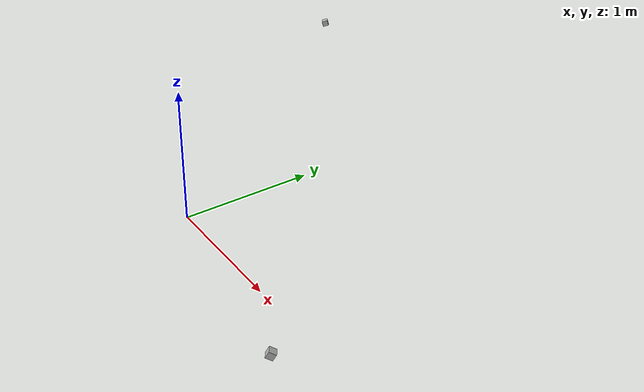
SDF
<?xml version="1.0"?>
<sdf version="1.6">
  <model name="new_sensorsV">
    <static>true</static>
    <link name="sensorsV_link">
      <visual name="visual_sensorsV">
        <cast_shadows>true</cast_shadows>
        <geometry>
          <mesh>
            <uri>model://cbrSensorsV/meshes/sensorsV.dae</uri>
          </mesh>
        </geometry>
        <material>
          <script>
            <uri>model://cbrSensorsV/materials/scripts</uri>
            <uri>model://cbrSensorsV/materials/textures</uri>
            <name>sensorsV/color</name>
          </script>
        </material>
      </visual>
      <collision name="collision_sensorsV">
        <geometry>
          <mesh>
            <uri>model://cbrSensorsV/meshes/sensorsV.dae</uri>
          </mesh>
        </geometry>
      </collision>
    </link>
  </model>
</sdf>
